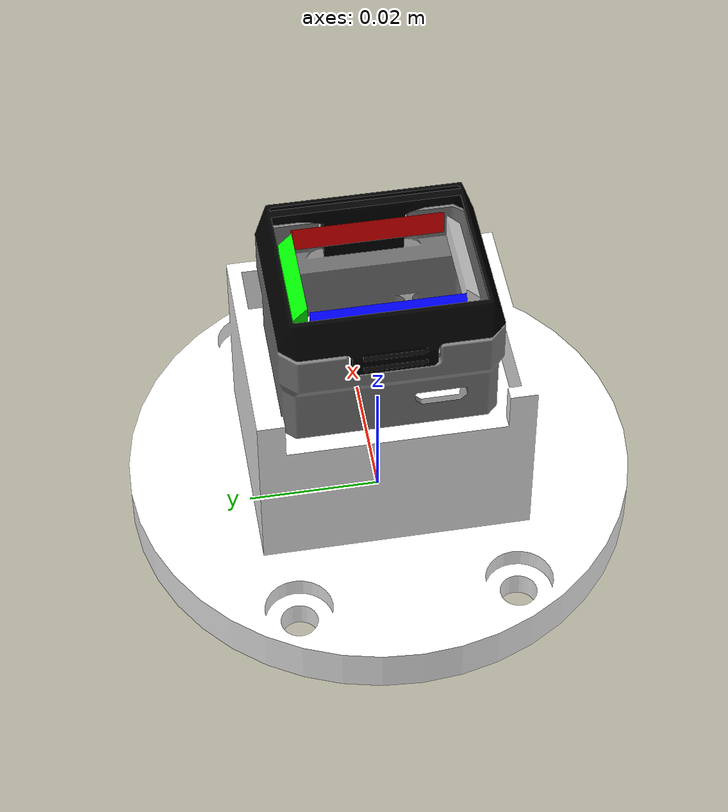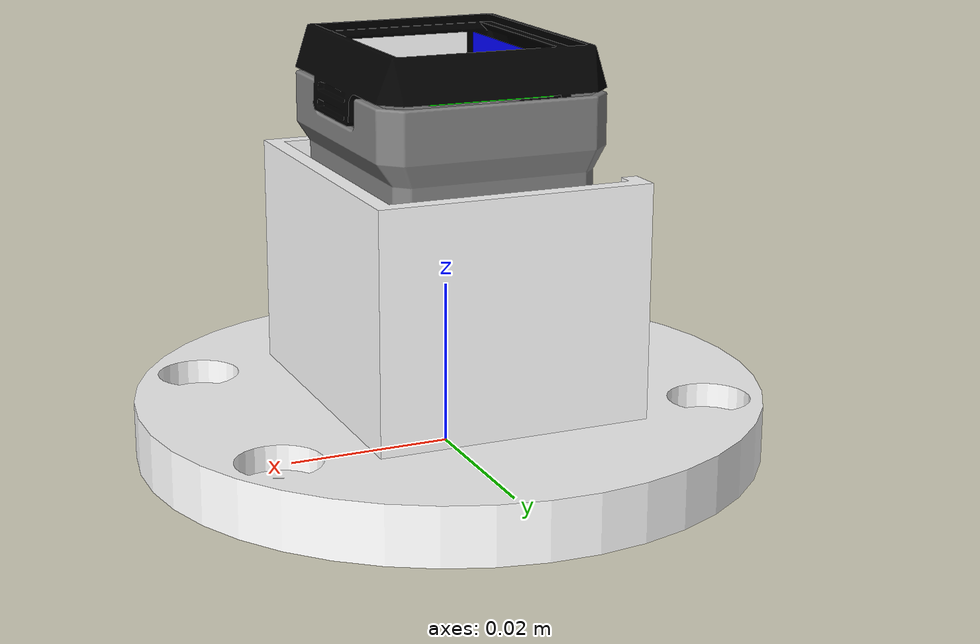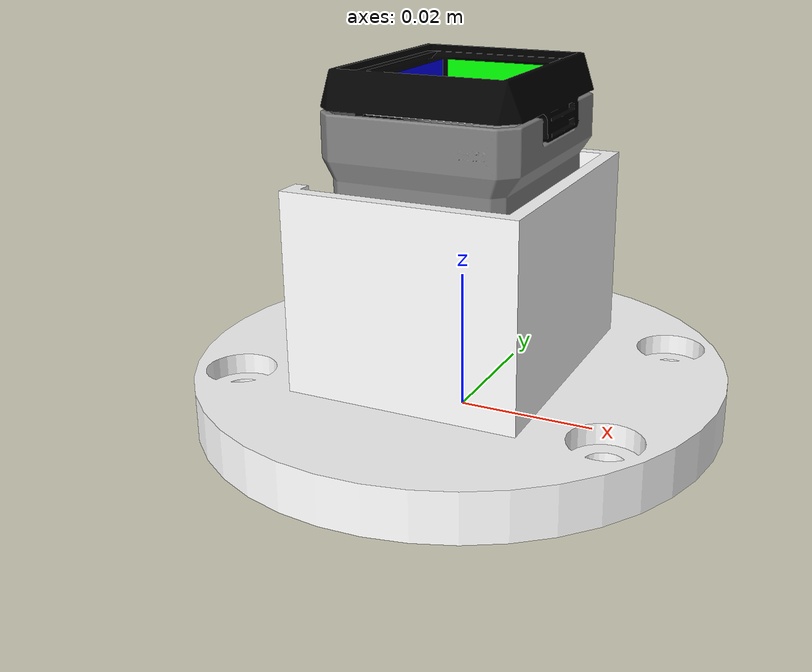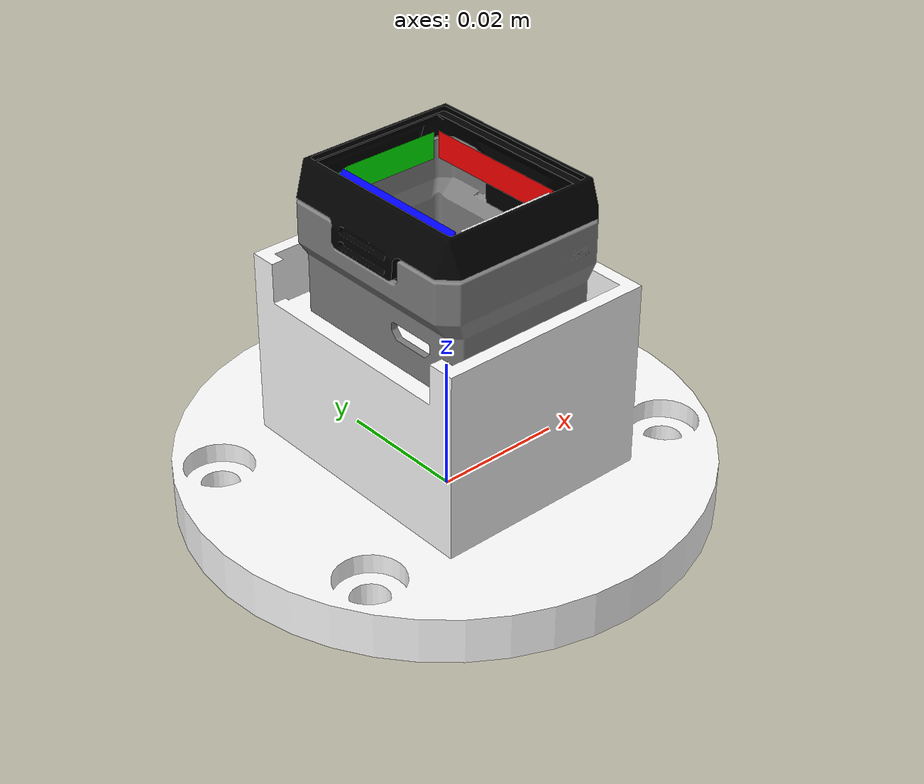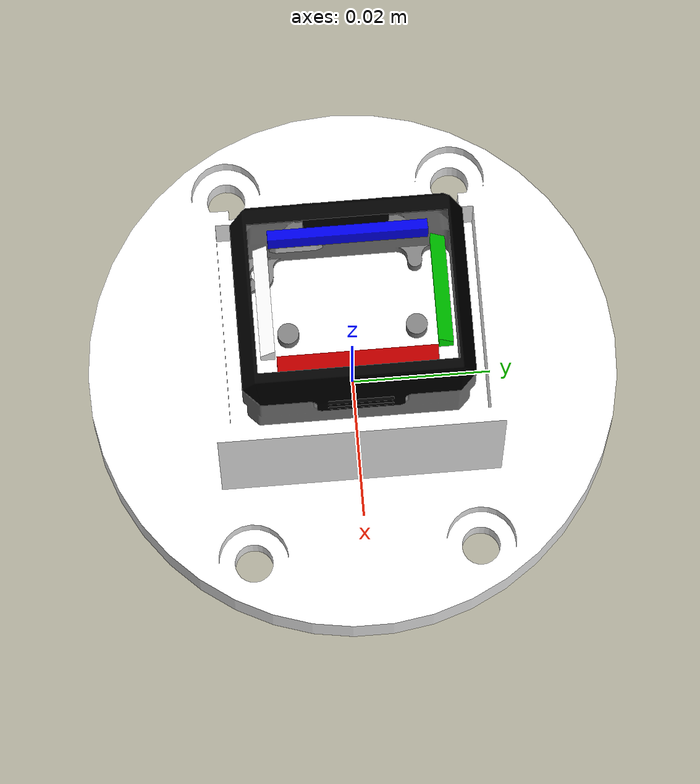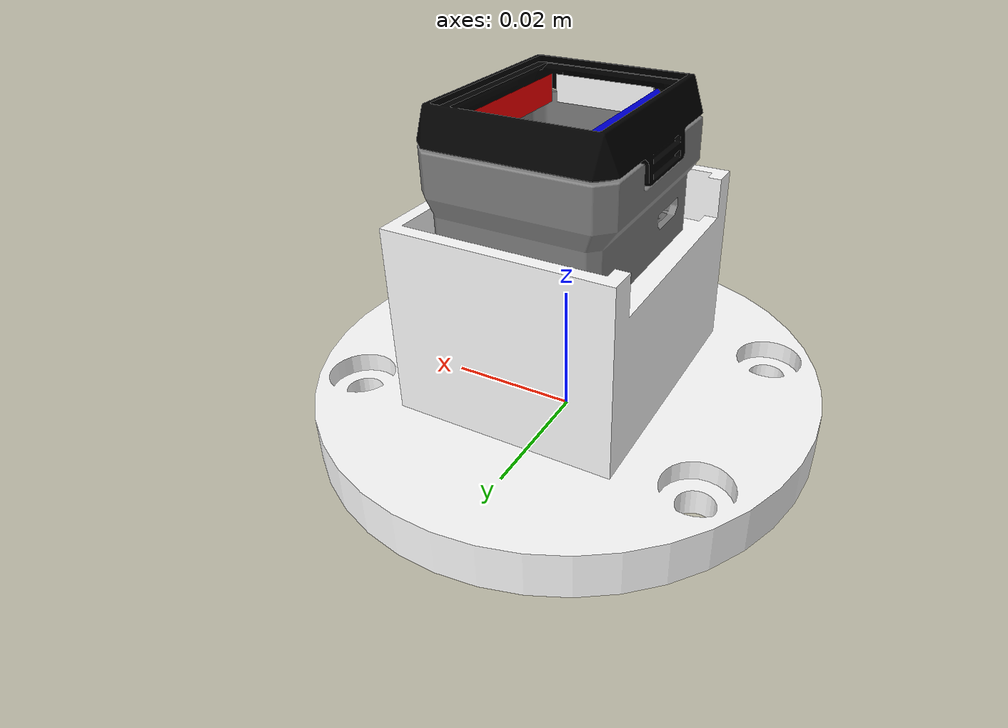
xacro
<?xml version="1.0"?>
<robot xmlns:xacro="http://ros.org/wiki/xacro" name="gelsight_sensor">

  <!-- Incluir la macro principal -->
  <xacro:include filename="$(find gelsight_description)/urdf/gelsight_sensor.xacro" />

  <!-- Definir base_link -->
  <link name="base_link">
    <inertial>
      <mass value="0.1"/>
      <origin xyz="0 0 0" rpy="0 0 0"/>
      <inertia ixx="0.001" iyy="0.001" izz="0.001"
              ixy="0.0" ixz="0.0" iyz="0.0"/>
    </inertial>

  </link>

  <!-- Instanciar el sensor físico -->
  <xacro:gelsight_sensor parent="base_link"/>

  <!-- Desactivar gravedad -->
  <gazebo reference="base_link">
    <gravity>0</gravity>
  </gazebo>

<gazebo>
  <plugin name="apply_force" filename="libgazebo_ros_force.so">
    <bodyName>base_link</bodyName>
    <topicName>applied_control_force_gs</topicName>
    <frameName>base_link</frameName>
  </plugin>
</gazebo>

</robot>

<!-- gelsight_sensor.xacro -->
<robot xmlns:xacro="http://ros.org/wiki/xacro">

  <xacro:include filename="$(find gelsight_description)/urdf/gs_mini_spectre.xacro"/>

  <xacro:macro name="gelsight_sensor" params="parent">

    <link name="gs_kinova_holder_link">
      <visual>
        <geometry>
          <mesh filename="package://gelsight_description/meshes/remain/gs_holder.stl" scale="0.001 0.001 0.001"/>
        </geometry>
        <material name="">
          <color rgba="1 1 1 1"/>
        </material>
      </visual>
      <inertial>
        <mass value="0.1"/>
        <origin xyz="0 0 0" rpy="0 0 0"/>
        <inertia ixx="0.001" ixy="0.0" ixz="0.0"
                 iyy="0.001" iyz="0.0"
                 izz="0.001"/>
      </inertial>
    </link>

    <link name="gs_base_link">
      <visual>
        <geometry>
          <mesh filename="package://gelsight_description/meshes/remain/gs_base.stl" scale="0.001 0.001 0.001"/>
        </geometry>
        <material name="">
          <color rgba="0.5 0.5 0.5 1"/>
        </material>
      </visual>
      <inertial>
        <mass value="0.1"/>
        <origin xyz="0 0 0" rpy="0 0 0"/>
        <inertia ixx="0.001" ixy="0.0" ixz="0.0"
                 iyy="0.001" iyz="0.0"
                 izz="0.001"/>
      </inertial>
    </link>

    <link name="gs_cap_link">
      <visual>
        <geometry>
          <mesh filename="package://gelsight_description/meshes/remain/gs_cap.stl" scale="0.001 0.001 0.001"/>
        </geometry>
        <material name="">
          <color rgba="0 0 0 1"/>
        </material>
      </visual>
      <inertial>
        <mass value="0.1"/>
        <origin xyz="0 0 0" rpy="0 0 0"/>
        <inertia ixx="0.001" ixy="0.0" ixz="0.0"
                 iyy="0.001" iyz="0.0"
                 izz="0.001"/>
      </inertial>
    </link>

     <link name="gs_gel_link">
      <inertial>
        <mass value="0.1"/>
        <origin xyz="0 0 0" rpy="0 0 0"/>
        <inertia ixx="0.001" ixy="0.0" ixz="0.0"
                iyy="0.001" iyz="0.0"
                izz="0.001"/>
      </inertial>
    </link>

     <joint name="gs_holder_joint" type="fixed">
      <parent link="${parent}"/>
      <child link="gs_kinova_holder_link"/>
      <origin xyz="0.0 0.0 0.0127151" rpy="0 0 0"/>
    </joint>

    <joint name="gs_base_joint" type="fixed">
      <parent link="gs_kinova_holder_link"/>
      <child link="gs_base_link"/>
      <origin xyz="0.0 0.0 0.0205405" rpy="0 0 0"/>
    </joint>

    <joint name="gs_cap_joint" type="fixed">
      <parent link="gs_base_link"/>
      <child link="gs_cap_link"/>
      <origin xyz="0.0 0.0 0.0129196" rpy="0 0 0"/>
    </joint>

    <joint name="gs_gel_joint" type="fixed">
      <parent link="gs_base_link"/>
      <child link="gs_gel_link"/>
      <origin xyz="0.0 0.0 0.0184587" rpy="0 0 0"/>
    </joint>

      <!-- +++++++++++++++++++++++camera link+++++++++++++++++++++++++++++ -->

     <link name="gs_camera_link">
      <visual>
        <geometry>
          <mesh filename="package://gelsight_description/meshes/remain/gs_glass.stl" scale="0.000001 0.0000001 0.0000001"/>
        </geometry>
      </visual>
    </link>

    <joint name="gs_camera_joint" type="fixed">
      <parent link="gs_base_link"/>
      <child link="gs_camera_link"/>
      <origin xyz="0.0 0.0 0.00154" rpy="0 ${-pi/2} ${pi}"/>
    </joint>

    <link name="gs_camera_pcloud"/>
    <joint name="gs_camera_pcloud_joint" type="fixed">
      <parent link="gs_base_link"/>
      <child link="gs_camera_pcloud"/>
      <origin xyz="0.0 0.0 0.00154" rpy="0 0 ${pi/2}"/>
    </joint>

     <!-- ++++++++++++++++++++++++++++++ Camera simulation +++++++++++++++++++++++++++++++++++-->

     <xacro:macro name="gelsight_camera" params="parent">

    <gazebo reference="${parent}">
      <sensor type="depth" name="gelsight_camera_sensor">
      <pose>0.0 0.0 0.0 0 0 0 </pose>
        <always_on>1</always_on>
        <update_rate>30.0</update_rate>
        <visualize>1</visualize>
        <topic>/depth_camera</topic>
        <camera name="head">
          <horizontal_fov>0.959931</horizontal_fov>
          <image>
            <width>320</width>
            <height>240</height>
            <format>R8G8B8</format>
          </image>
          <clip>
            <near>0.018</near>
            <far>0.020</far>
          </clip>
          <depth_camera>
            <output>depths</output>
          </depth_camera>
        </camera>
        <plugin name="gelsight_link_controller" filename="libgazebo_ros_openni_kinect.so">
        <baseline>0.0</baseline>
          <alwaysOn>true</alwaysOn>
          <updateRate>30.0</updateRate>
          <cameraName>gelsight_ir</cameraName>
          <imageTopicName>/gelsight/image/image_raw</imageTopicName>
          <cameraInfoTopicName>/gelsight/depth/camera_info</cameraInfoTopicName>
          <depthImageTopicName>/gelsight/depth/image_raw</depthImageTopicName>
          <depthImageInfoTopicName>/gelsight/depth/camera_info</depthImageInfoTopicName>
          <pointCloudTopicName>/gelsight/depth/points</pointCloudTopicName>
          <frameName>gs_camera_pcloud</frameName>
          <pointCloudCutoff>0.0</pointCloudCutoff>
          <distortionK1>0</distortionK1>
          <distortionK2>0</distortionK2>
          <distortionK3>0</distortionK3>
          <distortionT1>0</distortionT1>
          <distortionT2>0</distortionT2>
          <CxPrime>0</CxPrime>
          <Cx>0</Cx>
          <Cy>0</Cy>
          <focalLength>0</focalLength>
          <hackBaseline>0</hackBaseline>
        </plugin>
      </sensor>
    </gazebo>

  </xacro:macro>
    <xacro:gelsight_camera parent="gs_camera_link"/>
    <xacro:gelsight_spectre suffix="bottom" parent="gs_base_link" color="1.0 1.0 1.0" r="0" x=" 0.0" y="-0.012" filename="package://gelsight_description/meshes/remain/spectre_bottom.stl"/>
    <xacro:gelsight_spectre suffix="right"  parent="gs_base_link" color="1.0 0.0 0.0" r="0" x=" 0.009" y=" 0.0" filename="package://gelsight_description/meshes/remain/spectre_right.stl"/>
    <xacro:gelsight_spectre suffix="top"    parent="gs_base_link" color="0.0 1.0 0.0" r="0" x=" 0.0" y=" 0.012" filename="package://gelsight_description/meshes/remain/spectre_top.stl"/>
    <xacro:gelsight_spectre suffix="left"   parent="gs_base_link" color="0.0 0.0 1.0" r="0" x="-0.009" y=" 0.0" filename="package://gelsight_description/meshes/remain/spectre_left.stl"/>
  </xacro:macro>

</robot>

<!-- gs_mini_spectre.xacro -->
<robot xmlns:xacro="http://ros.org/wiki/xacro">

  <xacro:macro name="gelsight_spectre" params="suffix parent r x y color filename">
    <link name="gelsight_spectre_${suffix}">
      <visual>
        <origin rpy="0 0 ${r}" xyz="${x} ${y} 0.0129294"/>
        <geometry>
          <mesh filename="${filename}" scale="0.001 0.001 0.001"/>
        </geometry>
       <material name="transparent_spectre">
            <color rgba="${color} 1.0"/>
        </material>
      </visual>
      <inertial>
        <mass value="0.01"/>
        <origin xyz="0 0 0" rpy="0 0 0"/>
        <inertia ixx="1e-5" ixy="0.0" ixz="0.0"
                 iyy="1e-5" iyz="0.0"
                 izz="1e-5"/>
      </inertial>
    </link>
    <!-- Colors of mirror leds -->
    <gazebo reference="gelsight_spectre_${suffix}">
      <visual>
        <material>
          <ambient>${color} 0.9</ambient>
          <diffuse>${color} 0.9</diffuse>
          <specular>0.1 0.1 0.1 0</specular>
          <emissive>${color} 0.01</emissive>
        </material>
      </visual>
    </gazebo>

    <joint name="gelsight_base_to_spectre_${suffix}" type="fixed">
      <parent link="${parent}"/>
      <child link="gelsight_spectre_${suffix}"/>
      <origin xyz="0 0 0.0" rpy="0 0 0"/>
    </joint>
  </xacro:macro>

</robot>
